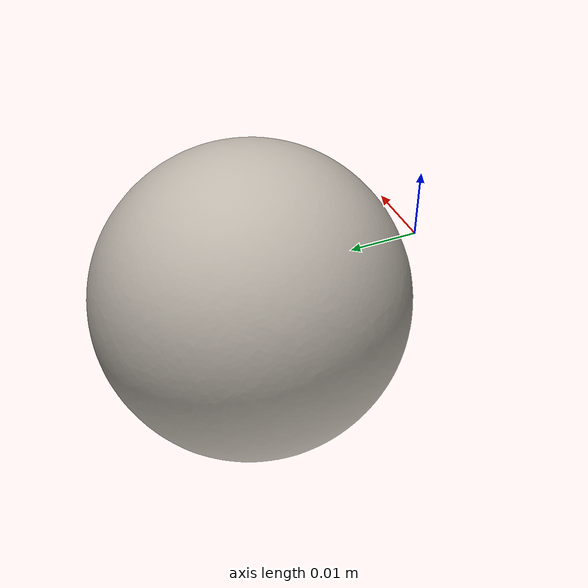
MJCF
<mujoco model="bread">
  <asset>
    <mesh file="nontextured.stl" name="obj_mesh" scale="0.8 0.8 0.8"/>
    <texture file="../../../../../textures/bread.png" type="2d" name="tex-bread" />
    <material name="bread" reflectance="0.7" texrepeat="15 15" texture="tex-bread" texuniform="true"/>
  </asset>
  <worldbody>
    <body>
      <body name="collision">
        <geom pos="0.009053000000000002 0.12223200000000001 -0.027596000000000002" mesh="obj_mesh" type="mesh" solimp="0.998 0.998 0.001" solref="0.001 1" density="50" friction="0.95 0.3 0.1"  material="bread" group="1" condim="4"/>
      </body>
      <body name="visual">
        <geom pos="0.009053000000000002 0.12223200000000001 -0.027596000000000002" mesh="obj_mesh" type="mesh" material="bread"  conaffinity="0" contype="0"  group="0" mass="0.0001"/>
        <geom pos="0.009053000000000002 0.12223200000000001 -0.027596000000000002" mesh="obj_mesh" type="mesh" material="bread"  conaffinity="0" contype="0"  group="1" mass="0.0001"/>
      </body>
      <site rgba="0 0 0 0" size="0.005" pos="0 0 -0.027787" name="bottom_site"/>
      <site rgba="0 0 0 0" size="0.005" pos="0 0 0.027787" name="top_site"/>
      <site rgba="0 0 0 0" size="0.005" pos="0.027889 0.028028000000000004 0.027787" name="horizontal_radius_site"/>
    </body>
  </worldbody>
</mujoco>
